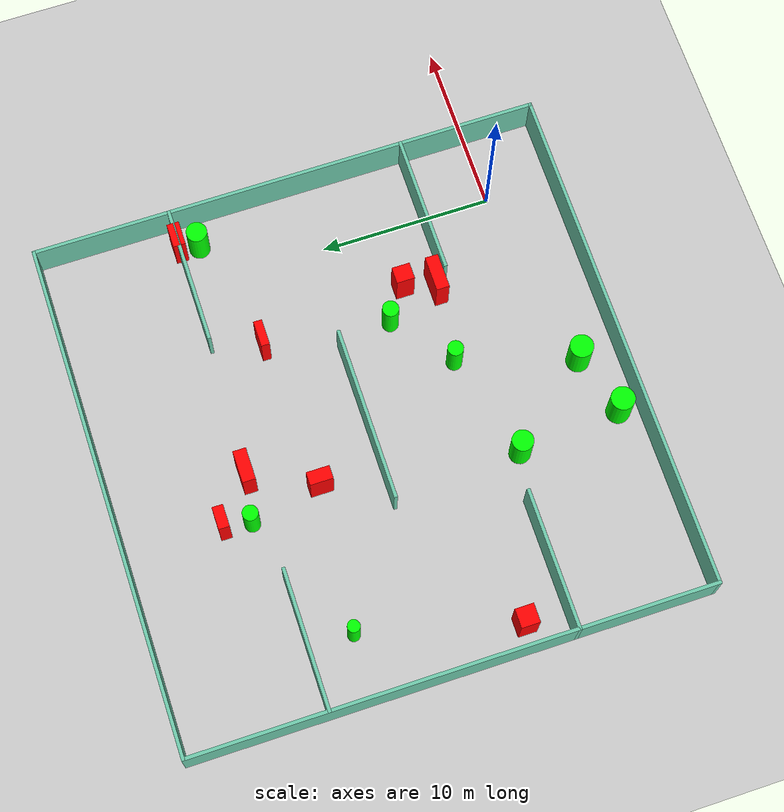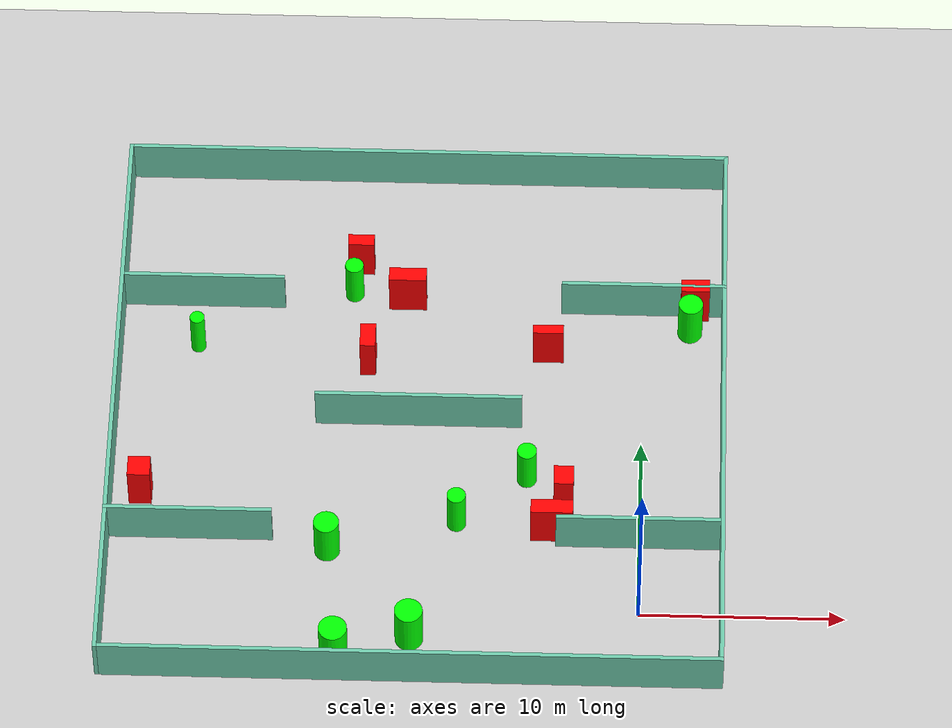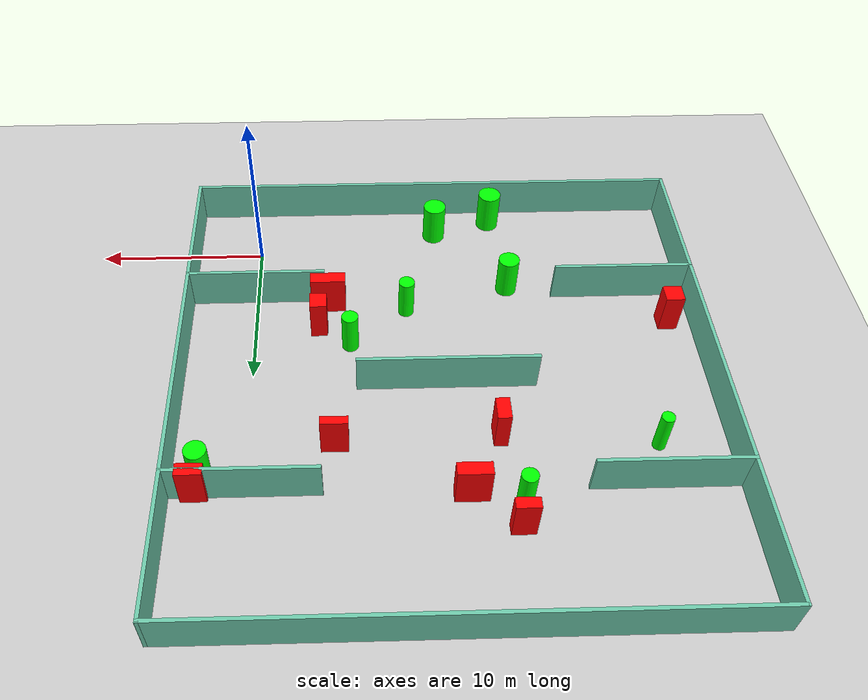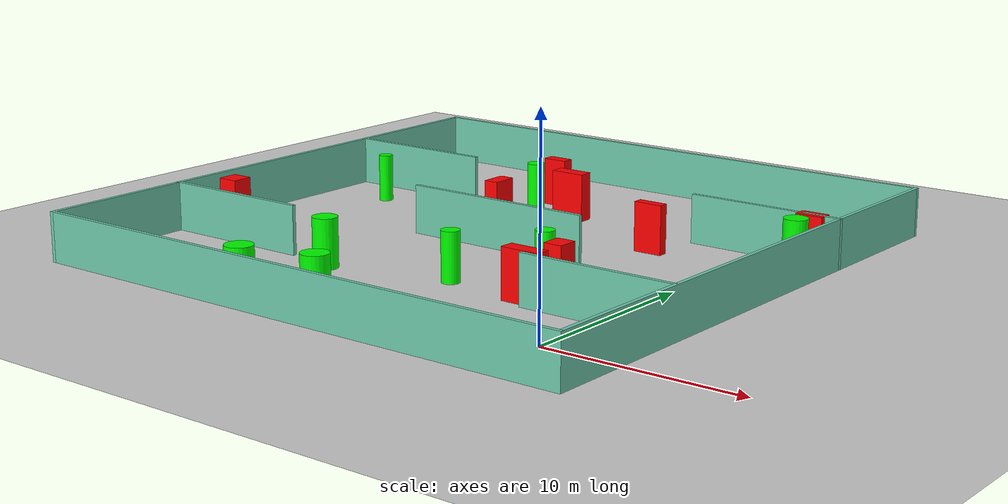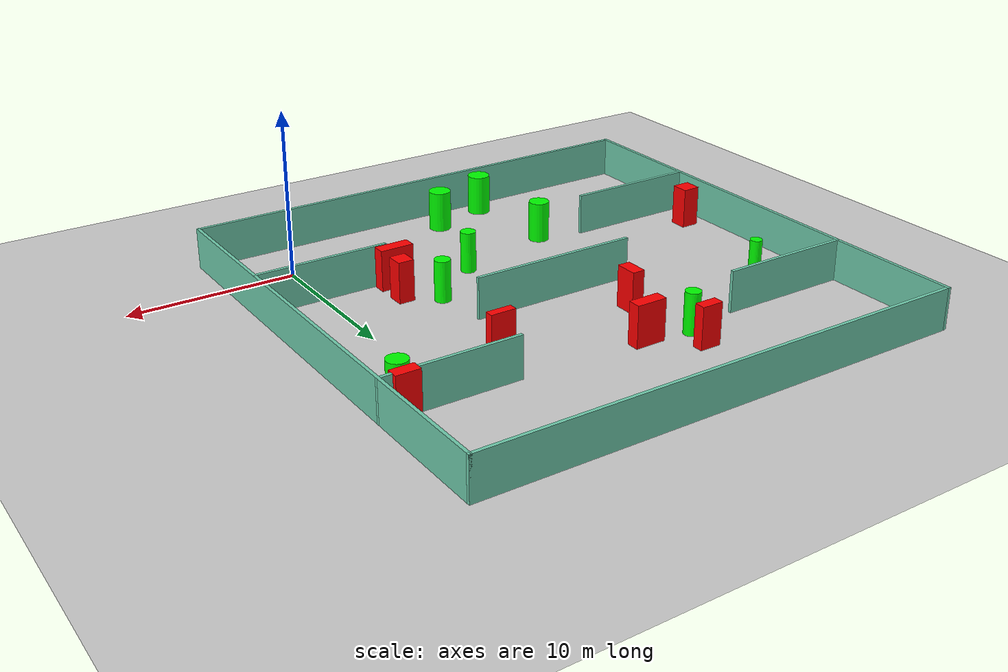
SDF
<sdf version="1.7">
 <world name="default">
  <light name="sun" type="directional">
   <pose>0 0 10 0 -0 0</pose>
   <diffuse>0.8 0.8 0.8 1</diffuse>
   <specular>0.2 0.2 0.2 1</specular>
   <attenuation>
    <range>1000</range>
    <constant>0.9</constant>
    <linear>0.01</linear>
    <quadratic>0.001</quadratic>
   </attenuation>
   <direction>-0.5 0.1 -0.9</direction>
   <spot><inner_angle>0</inner_angle><outer_angle>0</outer_angle><falloff>0</falloff></spot>
  </light>
  <model name="ground_plane">
   <static>1</static>
   <link name="link">
    <collision name="collision">
     <geometry><plane><normal>0 0 1</normal><size>100 100</size></plane></geometry>
     <surface>
      <contact><collide_bitmask>65535</collide_bitmask></contact>
      <friction><ode><mu>100</mu><mu2>50</mu2></ode></friction>
     </surface>
    </collision>
    <visual name="visual">
     <cast_shadows>0</cast_shadows>
     <geometry><plane><normal>0 0 1</normal><size>100 100</size></plane></geometry>
     <material>
      <script><uri>file://media/materials/scripts/gazebo.material</uri><name>Gazebo/Grey</name></script>
     </material>
    </visual>
   </link>
  </model>
  <gravity>0 0 -9.8</gravity>
  <magnetic_field>6e-06 2.3e-05 -4.2e-05</magnetic_field>
  <atmosphere type="adiabatic"/>
  <physics type="ode">
   <max_step_size>0.001</max_step_size>
   <real_time_factor>1</real_time_factor>
   <real_time_update_rate>1000</real_time_update_rate>
  </physics>
  <scene><ambient>0.4 0.4 0.4 1</ambient><background>0.7 0.7 0.7 1</background><shadows>1</shadows></scene>
  <spherical_coordinates>
   <surface_model>EARTH_WGS84</surface_model>
   <latitude_deg>0</latitude_deg>
   <longitude_deg>0</longitude_deg>
   <elevation>0</elevation>
   <heading_deg>0</heading_deg>
  </spherical_coordinates>
  <model name="my_base_walls">
   <link name="Wall_10">
    <collision name="Wall_10_Collision">
     <geometry><box><size>8.2 0.2 2.5</size></box></geometry>
     <pose>0 0 1.25 0 -0 0</pose>
    </collision>
    <visual name="Wall_10_Visual">
     <pose>0 0 1.25 0 -0 0</pose>
     <geometry><box><size>8.2 0.2 2.5</size></box></geometry>
     <material>
      <script><uri>file://media/materials/scripts/gazebo.material</uri><name>Gazebo/Grey</name></script>
      <ambient>0.435294 0.796078 0.67451 1</ambient>
     </material>
     <meta><layer>0</layer></meta>
    </visual>
    <pose>-11 -7 0 0 -0 0</pose>
   </link>
   <link name="Wall_12">
    <collision name="Wall_12_Collision">
     <geometry><box><size>8.2 0.2 2.5</size></box></geometry>
     <pose>0 0 1.25 0 -0 0</pose>
    </collision>
    <visual name="Wall_12_Visual">
     <pose>0 0 1.25 0 -0 0</pose>
     <geometry><box><size>8.2 0.2 2.5</size></box></geometry>
     <material>
      <script><uri>file://media/materials/scripts/gazebo.material</uri><name>Gazebo/Grey</name></script>
      <ambient>0.435294 0.796078 0.67451 1</ambient>
     </material>
     <meta><layer>0</layer></meta>
    </visual>
    <pose>-11 7 0 0 -0 0</pose>
   </link>
   <link name="Wall_14">
    <collision name="Wall_14_Collision">
     <geometry><box><size>8.2 0.2 2.5</size></box></geometry>
     <pose>0 0 1.25 0 -0 0</pose>
    </collision>
    <visual name="Wall_14_Visual">
     <pose>0 0 1.25 0 -0 0</pose>
     <geometry><box><size>8.2 0.2 2.5</size></box></geometry>
     <material>
      <script><uri>file://media/materials/scripts/gazebo.material</uri><name>Gazebo/Grey</name></script>
      <ambient>0.435294 0.796078 0.67451 1</ambient>
     </material>
     <meta><layer>0</layer></meta>
    </visual>
    <pose>11 7 0 0 -0 3.14159</pose>
   </link>
   <link name="Wall_16">
    <collision name="Wall_16_Collision">
     <geometry><box><size>10.2 0.2 2.5</size></box></geometry>
     <pose>0 0 1.25 0 -0 0</pose>
    </collision>
    <visual name="Wall_16_Visual">
     <pose>0 0 1.25 0 -0 0</pose>
     <geometry><box><size>10.2 0.2 2.5</size></box></geometry>
     <material>
      <script><uri>file://media/materials/scripts/gazebo.material</uri><name>Gazebo/Grey</name></script>
      <ambient>0.435294 0.796078 0.67451 1</ambient>
     </material>
     <meta><layer>0</layer></meta>
    </visual>
    <pose>0 0 0 0 -0 3.14159</pose>
   </link>
   <link name="Wall_2">
    <collision name="Wall_2_Collision">
     <geometry><box><size>30.2 0.2 2.5</size></box></geometry>
     <pose>0 0 1.25 0 -0 0</pose>
    </collision>
    <visual name="Wall_2_Visual">
     <pose>0 0 1.25 0 -0 0</pose>
     <geometry><box><size>30.2 0.2 2.5</size></box></geometry>
     <material>
      <script><uri>file://media/materials/scripts/gazebo.material</uri><name>Gazebo/Grey</name></script>
      <ambient>0.435294 0.796078 0.67451 1</ambient>
     </material>
     <meta><layer>0</layer></meta>
    </visual>
    <pose>0 -15 0 0 -0 3.14159</pose>
   </link>
   <link name="Wall_3">
    <collision name="Wall_3_Collision">
     <geometry><box><size>30.2 0.2 2.5</size></box></geometry>
     <pose>0 0 1.25 0 -0 0</pose>
    </collision>
    <visual name="Wall_3_Visual">
     <pose>0 0 1.25 0 -0 0</pose>
     <geometry><box><size>30.2 0.2 2.5</size></box></geometry>
     <material>
      <script><uri>file://media/materials/scripts/gazebo.material</uri><name>Gazebo/Grey</name></script>
      <ambient>0.435294 0.796078 0.67451 1</ambient>
     </material>
     <meta><layer>0</layer></meta>
    </visual>
    <pose>-15 0 0 0 -0 1.5708</pose>
   </link>
   <link name="Wall_4">
    <collision name="Wall_4_Collision">
     <geometry><box><size>30.2 0.2 2.5</size></box></geometry>
     <pose>0 0 1.25 0 -0 0</pose>
    </collision>
    <visual name="Wall_4_Visual">
     <pose>0 0 1.25 0 -0 0</pose>
     <geometry><box><size>30.2 0.2 2.5</size></box></geometry>
     <material>
      <script><uri>file://media/materials/scripts/gazebo.material</uri><name>Gazebo/Grey</name></script>
      <ambient>0.435294 0.796078 0.67451 1</ambient>
     </material>
     <meta><layer>0</layer></meta>
    </visual>
    <pose>0 15 0 0 -0 0</pose>
   </link>
   <link name="Wall_6">
    <collision name="Wall_6_Collision">
     <geometry><box><size>30.2 0.2 2.5</size></box></geometry>
     <pose>0 0 1.25 0 -0 0</pose>
    </collision>
    <visual name="Wall_6_Visual">
     <pose>0 0 1.25 0 -0 0</pose>
     <geometry><box><size>30.2 0.2 2.5</size></box></geometry>
     <material>
      <script><uri>file://media/materials/scripts/gazebo.material</uri><name>Gazebo/Grey</name></script>
      <ambient>0.435294 0.796078 0.67451 1</ambient>
     </material>
     <meta><layer>0</layer></meta>
    </visual>
    <pose>15 0 0 0 -0 1.5708</pose>
   </link>
   <link name="Wall_8">
    <collision name="Wall_8_Collision">
     <geometry><box><size>8.2 0.2 2.5</size></box></geometry>
     <pose>0 0 1.25 0 -0 0</pose>
    </collision>
    <visual name="Wall_8_Visual">
     <pose>0 0 1.25 0 -0 0</pose>
     <geometry><box><size>8.2 0.2 2.5</size></box></geometry>
     <material>
      <script><uri>file://media/materials/scripts/gazebo.material</uri><name>Gazebo/Grey</name></script>
      <ambient>0.435294 0.796078 0.67451 1</ambient>
     </material>
     <meta><layer>0</layer></meta>
    </visual>
    <pose>11 -7 0 0 -0 3.14159</pose>
   </link>
   <static>1</static>
   <pose>-11 11 0 0 -0 0</pose>
  </model>
  <model name="cylinder1">
   <static>1</static>
   <link name="link">
    <inertial>
     <mass>1</mass>
     <inertia><ixx>0.5</ixx><ixy>0</ixy><ixz>0</ixz><iyy>0.5</iyy><iyz>0</iyz><izz>1</izz></inertia>
    </inertial>
    <collision name="collision">
     <geometry><cylinder><radius>0.6921446169757146</radius><length>2.5</length></cylinder></geometry>
    </collision>
    <visual name="visual">
     <geometry><cylinder><radius>0.6921446169757146</radius><length>2.5</length></cylinder></geometry>
     <material>
      <ambient>0 1 0 1</ambient>
      <diffuse>0 1 0 1</diffuse>
      <specular>0.1 0.1 0.1 1</specular>
      <emissive>0 0 0 0</emissive>
     </material>
    </visual>
   </link>
   <pose>-14.655334860833115 -2.753632862348208 1.25 0 0 0</pose>
  </model>
  <model name="cylinder2">
   <static>1</static>
   <link name="link">
    <inertial>
     <mass>1</mass>
     <inertia><ixx>0.5</ixx><ixy>0</ixy><ixz>0</ixz><iyy>0.5</iyy><iyz>0</iyz><izz>1</izz></inertia>
    </inertial>
    <collision name="collision">
     <geometry><cylinder><radius>0.36243090986798326</radius><length>2.5</length></cylinder></geometry>
    </collision>
    <visual name="visual">
     <geometry><cylinder><radius>0.36243090986798326</radius><length>2.5</length></cylinder></geometry>
     <material>
      <ambient>0 1 0 1</ambient>
      <diffuse>0 1 0 1</diffuse>
      <specular>0.1 0.1 0.1 1</specular>
      <emissive>0 0 0 0</emissive>
     </material>
    </visual>
   </link>
   <pose>-22.123937938258887 15.390857050386103 1.25 0 0 0</pose>
  </model>
  <model name="cylinder3">
   <static>1</static>
   <link name="link">
    <inertial>
     <mass>1</mass>
     <inertia><ixx>0.5</ixx><ixy>0</ixy><ixz>0</ixz><iyy>0.5</iyy><iyz>0</iyz><izz>1</izz></inertia>
    </inertial>
    <collision name="collision">
     <geometry><cylinder><radius>0.6833973999989648</radius><length>2.5</length></cylinder></geometry>
    </collision>
    <visual name="visual">
     <geometry><cylinder><radius>0.6833973999989648</radius><length>2.5</length></cylinder></geometry>
     <material>
      <ambient>0 1 0 1</ambient>
      <diffuse>0 1 0 1</diffuse>
      <specular>0.1 0.1 0.1 1</specular>
      <emissive>0 0 0 0</emissive>
     </material>
    </visual>
   </link>
   <pose>-11.05711724793198 -1.6545871414399929 1.25 0 0 0</pose>
  </model>
  <model name="cylinder4">
   <static>1</static>
   <link name="link">
    <inertial>
     <mass>1</mass>
     <inertia><ixx>0.5</ixx><ixy>0</ixy><ixz>0</ixz><iyy>0.5</iyy><iyz>0</iyz><izz>1</izz></inertia>
    </inertial>
    <collision name="collision">
     <geometry><cylinder><radius>0.4599188883971739</radius><length>2.5</length></cylinder></geometry>
    </collision>
    <visual name="visual">
     <geometry><cylinder><radius>0.4599188883971739</radius><length>2.5</length></cylinder></geometry>
     <material>
      <ambient>0 1 0 1</ambient>
      <diffuse>0 1 0 1</diffuse>
      <specular>0.1 0.1 0.1 1</specular>
      <emissive>0 0 0 0</emissive>
     </material>
    </visual>
   </link>
   <pose>-8.966328006658234 5.086667736518589 1.25 0 0 0</pose>
  </model>
  <model name="cylinder5">
   <static>1</static>
   <link name="link">
    <inertial>
     <mass>1</mass>
     <inertia><ixx>0.5</ixx><ixy>0</ixy><ixz>0</ixz><iyy>0.5</iyy><iyz>0</iyz><izz>1</izz></inertia>
    </inertial>
    <collision name="collision">
     <geometry><cylinder><radius>0.6226099214690608</radius><length>2.5</length></cylinder></geometry>
    </collision>
    <visual name="visual">
     <geometry><cylinder><radius>0.6226099214690608</radius><length>2.5</length></cylinder></geometry>
     <material>
      <ambient>0 1 0 1</ambient>
      <diffuse>0 1 0 1</diffuse>
      <specular>0.1 0.1 0.1 1</specular>
      <emissive>0 0 0 0</emissive>
     </material>
    </visual>
   </link>
   <pose>-15.219538240420988 3.3462739449336816 1.25 0 0 0</pose>
  </model>
  <model name="cylinder6">
   <static>1</static>
   <link name="link">
    <inertial>
     <mass>1</mass>
     <inertia><ixx>0.5</ixx><ixy>0</ixy><ixz>0</ixz><iyy>0.5</iyy><iyz>0</iyz><izz>1</izz></inertia>
    </inertial>
    <collision name="collision">
     <geometry><cylinder><radius>0.4783306436011408</radius><length>2.5</length></cylinder></geometry>
    </collision>
    <visual name="visual">
     <geometry><cylinder><radius>0.4783306436011408</radius><length>2.5</length></cylinder></geometry>
     <material>
      <ambient>0 1 0 1</ambient>
      <diffuse>0 1 0 1</diffuse>
      <specular>0.1 0.1 0.1 1</specular>
      <emissive>0 0 0 0</emissive>
     </material>
    </visual>
   </link>
   <pose>-5.588253055595963 7.794428102615676 1.25 0 0 0</pose>
  </model>
  <model name="cylinder7">
   <static>1</static>
   <link name="link">
    <inertial>
     <mass>1</mass>
     <inertia><ixx>0.5</ixx><ixy>0</ixy><ixz>0</ixz><iyy>0.5</iyy><iyz>0</iyz><izz>1</izz></inertia>
    </inertial>
    <collision name="collision">
     <geometry><cylinder><radius>0.6052977246621163</radius><length>2.5</length></cylinder></geometry>
    </collision>
    <visual name="visual">
     <geometry><cylinder><radius>0.6052977246621163</radius><length>2.5</length></cylinder></geometry>
     <material>
      <ambient>0 1 0 1</ambient>
      <diffuse>0 1 0 1</diffuse>
      <specular>0.1 0.1 0.1 1</specular>
      <emissive>0 0 0 0</emissive>
     </material>
    </visual>
   </link>
   <pose>2.3314940700546742 16.843681386596312 1.25 0 0 0</pose>
  </model>
  <model name="cylinder8">
   <static>1</static>
   <link name="link">
    <inertial>
     <mass>1</mass>
     <inertia><ixx>0.5</ixx><ixy>0</ixy><ixz>0</ixz><iyy>0.5</iyy><iyz>0</iyz><izz>1</izz></inertia>
    </inertial>
    <collision name="collision">
     <geometry><cylinder><radius>0.45627852814912795</radius><length>2.5</length></cylinder></geometry>
    </collision>
    <visual name="visual">
     <geometry><cylinder><radius>0.45627852814912795</radius><length>2.5</length></cylinder></geometry>
     <material>
      <ambient>0 1 0 1</ambient>
      <diffuse>0 1 0 1</diffuse>
      <specular>0.1 0.1 0.1 1</specular>
      <emissive>0 0 0 0</emissive>
     </material>
    </visual>
   </link>
   <pose>-14.458631113717056 18.792796073876552 1.25 0 0 0</pose>
  </model>
  <model name="box1">
   <static>1</static>
   <link name="link">
    <inertial>
     <mass>1</mass>
     <inertia><ixx>0.083</ixx><ixy>0</ixy><ixz>0</ixz><iyy>0.083</iyy><iyz>0</iyz><izz>0.083</izz></inertia>
    </inertial>
    <collision name="collision">
     <geometry><box><size>1.3009680644028743 0.634084292238286 2.5</size></box></geometry>
    </collision>
    <visual name="visual">
     <geometry><box><size>1.3009680644028743 0.634084292238286 2.5</size></box></geometry>
     <material>
      <ambient>1 0 0 1</ambient>
      <diffuse>1 0 0 1</diffuse>
      <specular>0.1 0.1 0.1 1</specular>
      <emissive>0 0 0 0</emissive>
     </material>
    </visual>
    <sensor name="my_contact" type="contact">
     <contact><collision>box_collision</collision><topic>__default_topic__</topic></contact>
    </sensor>
   </link>
   <pose>-14.170182529237948 20.38041478607827 1.25 0 0 0</pose>
  </model>
  <model name="box2">
   <static>1</static>
   <link name="link">
    <inertial>
     <mass>1</mass>
     <inertia><ixx>0.083</ixx><ixy>0</ixy><ixz>0</ixz><iyy>0.083</iyy><iyz>0</iyz><izz>0.083</izz></inertia>
    </inertial>
    <collision name="collision">
     <geometry><box><size>0.7655705212476787 1.3445448923077856 2.5</size></box></geometry>
    </collision>
    <visual name="visual">
     <geometry><box><size>0.7655705212476787 1.3445448923077856 2.5</size></box></geometry>
     <material>
      <ambient>1 0 0 1</ambient>
      <diffuse>1 0 0 1</diffuse>
      <specular>0.1 0.1 0.1 1</specular>
      <emissive>0 0 0 0</emissive>
     </material>
    </visual>
    <sensor name="my_contact" type="contact">
     <contact><collision>box_collision</collision><topic>__default_topic__</topic></contact>
    </sensor>
   </link>
   <pose>-13.624863408755335 14.565049447512152 1.25 0 0 0</pose>
  </model>
  <model name="box3">
   <static>1</static>
   <link name="link">
    <inertial>
     <mass>1</mass>
     <inertia><ixx>0.083</ixx><ixy>0</ixy><ixz>0</ixz><iyy>0.083</iyy><iyz>0</iyz><izz>0.083</izz></inertia>
    </inertial>
    <collision name="collision">
     <geometry><box><size>1.417703641315049 0.7183307319202521 2.5</size></box></geometry>
    </collision>
    <visual name="visual">
     <geometry><box><size>1.417703641315049 0.7183307319202521 2.5</size></box></geometry>
     <material>
      <ambient>1 0 0 1</ambient>
      <diffuse>1 0 0 1</diffuse>
      <specular>0.1 0.1 0.1 1</specular>
      <emissive>0 0 0 0</emissive>
     </material>
    </visual>
    <sensor name="my_contact" type="contact">
     <contact><collision>box_collision</collision><topic>__default_topic__</topic></contact>
    </sensor>
   </link>
   <pose>2.5571922386297565 17.992671575401054 1.25 0 0 0</pose>
  </model>
  <model name="box4">
   <static>1</static>
   <link name="link">
    <inertial>
     <mass>1</mass>
     <inertia><ixx>0.083</ixx><ixy>0</ixy><ixz>0</ixz><iyy>0.083</iyy><iyz>0</iyz><izz>0.083</izz></inertia>
    </inertial>
    <collision name="collision">
     <geometry><box><size>2.05850924784151 0.7714048338954983 2.5</size></box></geometry>
    </collision>
    <visual name="visual">
     <geometry><box><size>2.05850924784151 0.7714048338954983 2.5</size></box></geometry>
     <material>
      <ambient>1 0 0 1</ambient>
      <diffuse>1 0 0 1</diffuse>
      <specular>0.1 0.1 0.1 1</specular>
      <emissive>0 0 0 0</emissive>
     </material>
    </visual>
    <sensor name="my_contact" type="contact">
     <contact><collision>box_collision</collision><topic>__default_topic__</topic></contact>
    </sensor>
   </link>
   <pose>-4.3062242695051545 4.582557342989482 1.25 0 0 0</pose>
  </model>
  <model name="box5">
   <static>1</static>
   <link name="link">
    <inertial>
     <mass>1</mass>
     <inertia><ixx>0.083</ixx><ixy>0</ixy><ixz>0</ixz><iyy>0.083</iyy><iyz>0</iyz><izz>0.083</izz></inertia>
    </inertial>
    <collision name="collision">
     <geometry><box><size>1.8652628855579272 0.7614954144854045 2.5</size></box></geometry>
    </collision>
    <visual name="visual">
     <geometry><box><size>1.8652628855579272 0.7614954144854045 2.5</size></box></geometry>
     <material>
      <ambient>1 0 0 1</ambient>
      <diffuse>1 0 0 1</diffuse>
      <specular>0.1 0.1 0.1 1</specular>
      <emissive>0 0 0 0</emissive>
     </material>
    </visual>
    <sensor name="my_contact" type="contact">
     <contact><collision>box_collision</collision><topic>__default_topic__</topic></contact>
    </sensor>
   </link>
   <pose>-11.775409146651452 18.31777141347073 1.25 0 0 0</pose>
  </model>
  <model name="box6">
   <static>1</static>
   <link name="link">
    <inertial>
     <mass>1</mass>
     <inertia><ixx>0.083</ixx><ixy>0</ixy><ixz>0</ixz><iyy>0.083</iyy><iyz>0</iyz><izz>0.083</izz></inertia>
    </inertial>
    <collision name="collision">
     <geometry><box><size>1.1018799157985972 1.0856384953632707 2.5</size></box></geometry>
    </collision>
    <visual name="visual">
     <geometry><box><size>1.1018799157985972 1.0856384953632707 2.5</size></box></geometry>
     <material>
      <ambient>1 0 0 1</ambient>
      <diffuse>1 0 0 1</diffuse>
      <specular>0.1 0.1 0.1 1</specular>
      <emissive>0 0 0 0</emissive>
     </material>
    </visual>
    <sensor name="my_contact" type="contact">
     <contact><collision>box_collision</collision><topic>__default_topic__</topic></contact>
    </sensor>
   </link>
   <pose>-24.48572829871897 6.410408820404156 1.25 0 0 0</pose>
  </model>
  <model name="box7">
   <static>1</static>
   <link name="link">
    <inertial>
     <mass>1</mass>
     <inertia><ixx>0.083</ixx><ixy>0</ixy><ixz>0</ixz><iyy>0.083</iyy><iyz>0</iyz><izz>0.083</izz></inertia>
    </inertial>
    <collision name="collision">
     <geometry><box><size>1.5167231367572502 0.5005649688043516 2.5</size></box></geometry>
    </collision>
    <visual name="visual">
     <geometry><box><size>1.5167231367572502 0.5005649688043516 2.5</size></box></geometry>
     <material>
      <ambient>1 0 0 1</ambient>
      <diffuse>1 0 0 1</diffuse>
      <specular>0.1 0.1 0.1 1</specular>
      <emissive>0 0 0 0</emissive>
     </material>
    </visual>
    <sensor name="my_contact" type="contact">
     <contact><collision>box_collision</collision><topic>__default_topic__</topic></contact>
    </sensor>
   </link>
   <pose>-4.701968892427129 15.135447049628233 1.25 0 0 0</pose>
  </model>
  <model name="box8">
   <static>1</static>
   <link name="link">
    <inertial>
     <mass>1</mass>
     <inertia><ixx>0.083</ixx><ixy>0</ixy><ixz>0</ixz><iyy>0.083</iyy><iyz>0</iyz><izz>0.083</izz></inertia>
    </inertial>
    <collision name="collision">
     <geometry><box><size>0.9678064311884436 1.0629323610258483 2.5</size></box></geometry>
    </collision>
    <visual name="visual">
     <geometry><box><size>0.9678064311884436 1.0629323610258483 2.5</size></box></geometry>
     <material>
      <ambient>1 0 0 1</ambient>
      <diffuse>1 0 0 1</diffuse>
      <specular>0.1 0.1 0.1 1</specular>
      <emissive>0 0 0 0</emissive>
     </material>
    </visual>
    <sensor name="my_contact" type="contact">
     <contact><collision>box_collision</collision><topic>__default_topic__</topic></contact>
    </sensor>
   </link>
   <pose>-3.761219098070253 6.433608629216085 1.25 0 0 0</pose>
  </model>
 </world>
</sdf>
